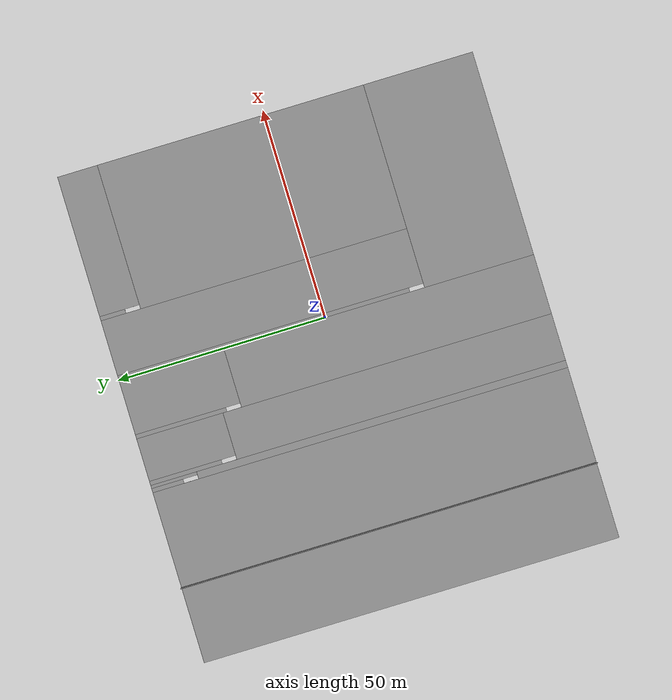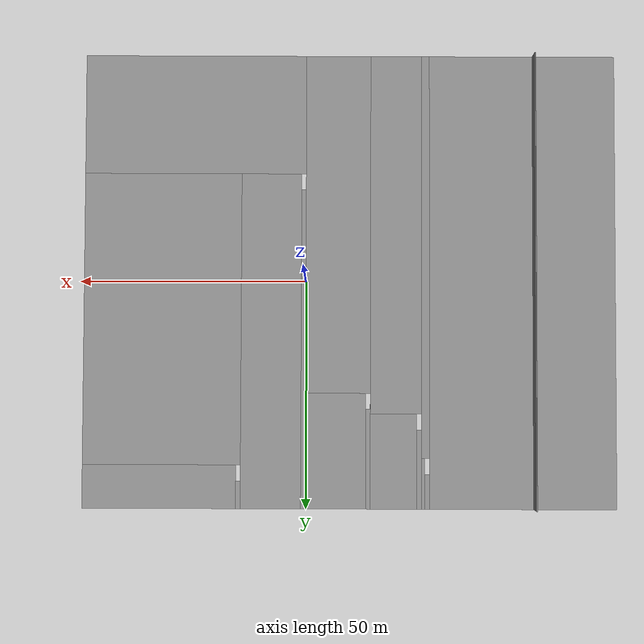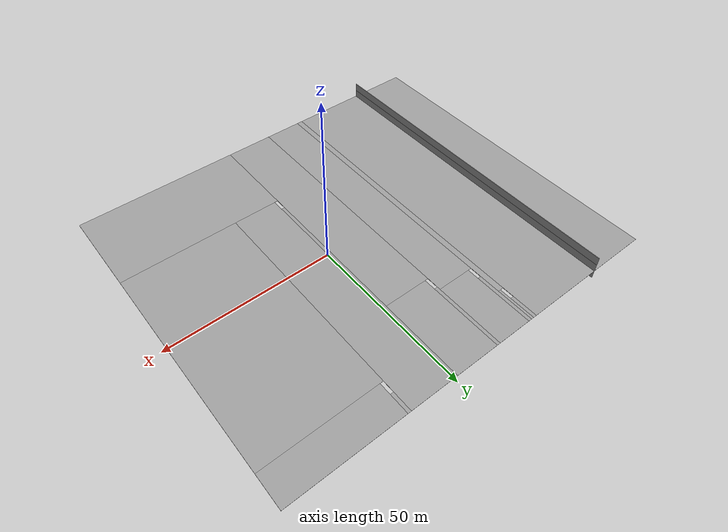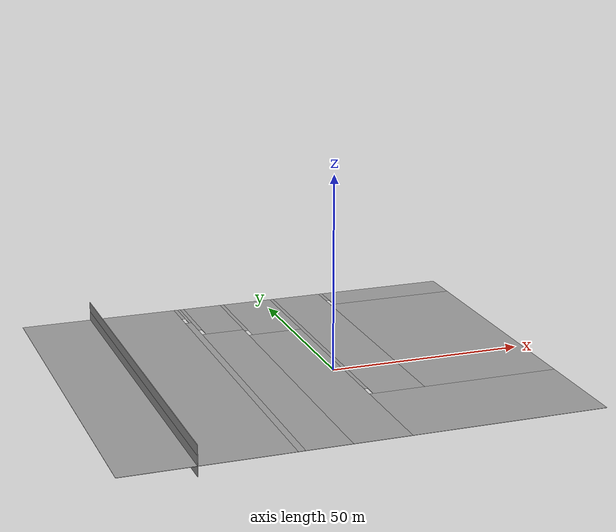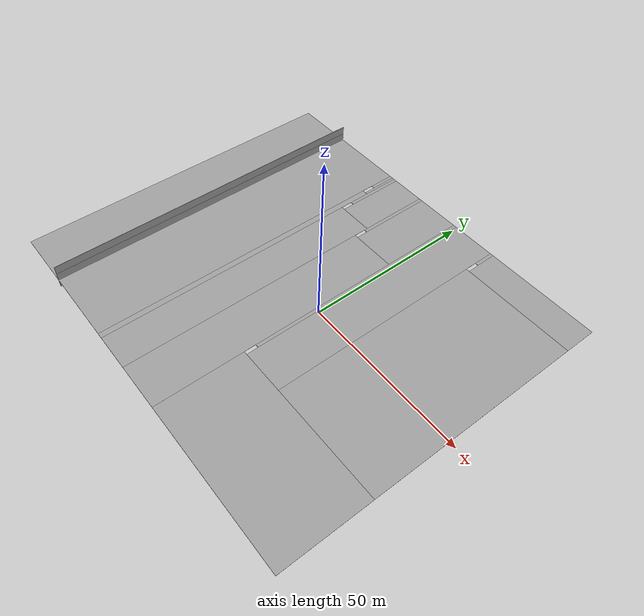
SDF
<sdf version="1.7">
 <model name="testx">
  <pose>-9.53854 -0.188873 0 0 -0 0</pose>
  <link name="Floor_0">
   <pose>-5e-06 1e-06 2.5 0 -0 0</pose>
   <visual name="Floor_0_Visual_0">
    <pose>-37.9276 0 0.05 0 -0 0</pose>
    <geometry><box><size>40.8948 99.75 0.1</size></box></geometry>
    <material>
     <script><uri>file://media/materials/scripts/gazebo.material</uri><name>Gazebo/Grey</name></script>
     <ambient>1 1 1 1</ambient>
    </material>
    <meta><layer>1</layer></meta>
   </visual>
   <collision name="Floor_0_Collision_0">
    <geometry><box><size>40.8948 99.75 0.1</size></box></geometry>
    <pose>-37.9276 0 0.05 0 -0 0</pose>
   </collision>
   <visual name="Floor_0_Visual_1">
    <pose>-16.609 -5.51796 0.05 0 -0 0</pose>
    <geometry><box><size>1.7424 88.7141 0.1</size></box></geometry>
    <material>
     <script><uri>file://media/materials/scripts/gazebo.material</uri><name>Gazebo/Grey</name></script>
     <ambient>1 1 1 1</ambient>
    </material>
    <meta><layer>1</layer></meta>
   </visual>
   <collision name="Floor_0_Collision_1">
    <geometry><box><size>1.7424 88.7141 0.1</size></box></geometry>
    <pose>-16.609 -5.51796 0.05 0 -0 0</pose>
   </collision>
   <visual name="Floor_0_Visual_2">
    <pose>-10.1372 -10.3718 0.05 0 -0 0</pose>
    <geometry><box><size>11.2012 79.0064 0.1</size></box></geometry>
    <material>
     <script><uri>file://media/materials/scripts/gazebo.material</uri><name>Gazebo/Grey</name></script>
     <ambient>1 1 1 1</ambient>
    </material>
    <meta><layer>1</layer></meta>
   </visual>
   <collision name="Floor_0_Collision_2">
    <geometry><box><size>11.2012 79.0064 0.1</size></box></geometry>
    <pose>-10.1372 -10.3718 0.05 0 -0 0</pose>
   </collision>
   <visual name="Floor_0_Visual_3">
    <pose>2.55744 -12.612 0.05 0 -0 0</pose>
    <geometry><box><size>14.1881 74.5259 0.1</size></box></geometry>
    <material>
     <script><uri>file://media/materials/scripts/gazebo.material</uri><name>Gazebo/Grey</name></script>
     <ambient>1 1 1 1</ambient>
    </material>
    <meta><layer>1</layer></meta>
   </visual>
   <collision name="Floor_0_Collision_3">
    <geometry><box><size>14.1881 74.5259 0.1</size></box></geometry>
    <pose>2.55744 -12.612 0.05 0 -0 0</pose>
   </collision>
   <visual name="Floor_0_Visual_4">
    <pose>34.0133 -36.7567 0.05 0 -0 0</pose>
    <geometry><box><size>48.7235 26.2365 0.1</size></box></geometry>
    <material>
     <script><uri>file://media/materials/scripts/gazebo.material</uri><name>Gazebo/Grey</name></script>
     <ambient>1 1 1 1</ambient>
    </material>
    <meta><layer>1</layer></meta>
   </visual>
   <collision name="Floor_0_Collision_4">
    <geometry><box><size>48.7235 26.2365 0.1</size></box></geometry>
    <pose>34.0133 -36.7567 0.05 0 -0 0</pose>
   </collision>
   <visual name="Floor_0_Visual_5">
    <pose>17.2456 13.1183 0.05 0 -0 0</pose>
    <geometry><box><size>13.1881 73.5135 0.1</size></box></geometry>
    <material>
     <script><uri>file://media/materials/scripts/gazebo.material</uri><name>Gazebo/Grey</name></script>
     <ambient>1 1 1 1</ambient>
    </material>
    <meta><layer>1</layer></meta>
   </visual>
   <collision name="Floor_0_Collision_5">
    <geometry><box><size>13.1881 73.5135 0.1</size></box></geometry>
    <pose>17.2456 13.1183 0.05 0 -0 0</pose>
   </collision>
   <visual name="Floor_0_Visual_6">
    <pose>41.1073 8.34704 0.05 0 -0 0</pose>
    <geometry><box><size>34.5354 63.971 0.1</size></box></geometry>
    <material>
     <script><uri>file://media/materials/scripts/gazebo.material</uri><name>Gazebo/Grey</name></script>
     <ambient>1 1 1 1</ambient>
    </material>
    <meta><layer>1</layer></meta>
   </visual>
   <collision name="Floor_0_Collision_6">
    <geometry><box><size>34.5354 63.971 0.1</size></box></geometry>
    <pose>41.1073 8.34704 0.05 0 -0 0</pose>
   </collision>
   <visual name="Floor_0_Visual_7">
    <pose>10.1515 14.8683 0.05 0 -0 0</pose>
    <geometry><box><size>1 70.0135 0.1</size></box></geometry>
    <material>
     <script><uri>file://media/materials/scripts/gazebo.material</uri><name>Gazebo/Grey</name></script>
     <ambient>1 1 1 1</ambient>
    </material>
    <meta><layer>1</layer></meta>
   </visual>
   <collision name="Floor_0_Collision_7">
    <geometry><box><size>1 70.0135 0.1</size></box></geometry>
    <pose>10.1515 14.8683 0.05 0 -0 0</pose>
   </collision>
   <visual name="Floor_0_Visual_8">
    <pose>3.05744 37.263 0.05 0 -0 0</pose>
    <geometry><box><size>13.1881 25.2241 0.1</size></box></geometry>
    <material>
     <script><uri>file://media/materials/scripts/gazebo.material</uri><name>Gazebo/Grey</name></script>
     <ambient>1 1 1 1</ambient>
    </material>
    <meta><layer>1</layer></meta>
   </visual>
   <collision name="Floor_0_Collision_8">
    <geometry><box><size>13.1881 25.2241 0.1</size></box></geometry>
    <pose>3.05744 37.263 0.05 0 -0 0</pose>
   </collision>
   <visual name="Floor_0_Visual_9">
    <pose>-4.03662 39.013 0.05 0 -0 0</pose>
    <geometry><box><size>1 21.7241 0.1</size></box></geometry>
    <material>
     <script><uri>file://media/materials/scripts/gazebo.material</uri><name>Gazebo/Grey</name></script>
     <ambient>1 1 1 1</ambient>
    </material>
    <meta><layer>1</layer></meta>
   </visual>
   <collision name="Floor_0_Collision_9">
    <geometry><box><size>1 21.7241 0.1</size></box></geometry>
    <pose>-4.03662 39.013 0.05 0 -0 0</pose>
   </collision>
   <visual name="Floor_0_Visual_10">
    <pose>-9.6372 39.5032 0.05 0 -0 0</pose>
    <geometry><box><size>10.2012 20.7436 0.1</size></box></geometry>
    <material>
     <script><uri>file://media/materials/scripts/gazebo.material</uri><name>Gazebo/Grey</name></script>
     <ambient>1 1 1 1</ambient>
    </material>
    <meta><layer>1</layer></meta>
   </visual>
   <collision name="Floor_0_Collision_10">
    <geometry><box><size>10.2012 20.7436 0.1</size></box></geometry>
    <pose>-9.6372 39.5032 0.05 0 -0 0</pose>
   </collision>
   <visual name="Floor_0_Visual_11">
    <pose>-15.2378 41.2532 0.05 0 -0 0</pose>
    <geometry><box><size>1 17.2436 0.1</size></box></geometry>
    <material>
     <script><uri>file://media/materials/scripts/gazebo.material</uri><name>Gazebo/Grey</name></script>
     <ambient>1 1 1 1</ambient>
    </material>
    <meta><layer>1</layer></meta>
   </visual>
   <collision name="Floor_0_Collision_11">
    <geometry><box><size>1 17.2436 0.1</size></box></geometry>
    <pose>-15.2378 41.2532 0.05 0 -0 0</pose>
   </collision>
   <visual name="Floor_0_Visual_12">
    <pose>-16.109 44.357 0.05 0 -0 0</pose>
    <geometry><box><size>0.742401 11.0359 0.1</size></box></geometry>
    <material>
     <script><uri>file://media/materials/scripts/gazebo.material</uri><name>Gazebo/Grey</name></script>
     <ambient>1 1 1 1</ambient>
    </material>
    <meta><layer>1</layer></meta>
   </visual>
   <collision name="Floor_0_Collision_12">
    <geometry><box><size>0.742401 11.0359 0.1</size></box></geometry>
    <pose>-16.109 44.357 0.05 0 -0 0</pose>
   </collision>
   <visual name="Floor_0_Visual_13">
    <pose>41.6073 45.1038 0.05 0 -0 0</pose>
    <geometry><box><size>33.5354 9.54244 0.1</size></box></geometry>
    <material>
     <script><uri>file://media/materials/scripts/gazebo.material</uri><name>Gazebo/Grey</name></script>
     <ambient>1 1 1 1</ambient>
    </material>
    <meta><layer>1</layer></meta>
   </visual>
   <collision name="Floor_0_Collision_13">
    <geometry><box><size>33.5354 9.54244 0.1</size></box></geometry>
    <pose>41.6073 45.1038 0.05 0 -0 0</pose>
   </collision>
   <visual name="Floor_0_Visual_14">
    <pose>-16.9802 46.107 0.05 0 -0 0</pose>
    <geometry><box><size>1 7.53592 0.1</size></box></geometry>
    <material>
     <script><uri>file://media/materials/scripts/gazebo.material</uri><name>Gazebo/Grey</name></script>
     <ambient>1 1 1 1</ambient>
    </material>
    <meta><layer>1</layer></meta>
   </visual>
   <collision name="Floor_0_Collision_14">
    <geometry><box><size>1 7.53592 0.1</size></box></geometry>
    <pose>-16.9802 46.107 0.05 0 -0 0</pose>
   </collision>
   <visual name="Floor_0_Visual_15">
    <pose>24.3396 46.8538 0.05 0 -0 0</pose>
    <geometry><box><size>1 6.04244 0.1</size></box></geometry>
    <material>
     <script><uri>file://media/materials/scripts/gazebo.material</uri><name>Gazebo/Grey</name></script>
     <ambient>1 1 1 1</ambient>
    </material>
    <meta><layer>1</layer></meta>
   </visual>
   <collision name="Floor_0_Collision_15">
    <geometry><box><size>1 6.04244 0.1</size></box></geometry>
    <pose>24.3396 46.8538 0.05 0 -0 0</pose>
   </collision>
  </link>
  <link name="Wall_14">
   <collision name="Wall_14_Collision">
    <geometry><box><size>99.75 0.15 2.5</size></box></geometry>
    <pose>0 0 1.25 0 -0 0</pose>
   </collision>
   <visual name="Wall_14_Visual">
    <pose>0 0 1.25 0 -0 0</pose>
    <geometry><box><size>99.75 0.15 2.5</size></box></geometry>
    <material>
     <script><uri>file://media/materials/scripts/gazebo.material</uri><name>Gazebo/Grey</name></script>
     <ambient>1 1 1 1</ambient>
    </material>
    <meta><layer>0</layer></meta>
   </visual>
   <pose>-40.3 1e-06 0 0 -0 1.5708</pose>
  </link>
  <link name="Wall_19">
   <collision name="Wall_19_Collision">
    <geometry><box><size>99.75 0.15 2.5</size></box></geometry>
    <pose>0 0 1.25 0 -0 0</pose>
   </collision>
   <visual name="Wall_19_Visual">
    <pose>0 0 1.25 0 -0 0</pose>
    <geometry><box><size>99.75 0.15 2.5</size></box></geometry>
    <material>
     <script><uri>file://media/materials/scripts/gazebo.material</uri><name>Gazebo/Grey</name></script>
     <ambient>1 1 1 1</ambient>
    </material>
    <meta><layer>1</layer></meta>
   </visual>
   <pose>-40.3 1e-06 2.5 0 -0 1.5708</pose>
  </link>
  <link name="Wall_23">
   <collision name="Wall_23_Collision">
    <geometry><box><size>99.75 0.15 2.5</size></box></geometry>
    <pose>0 0 1.25 0 -0 0</pose>
   </collision>
   <visual name="Wall_23_Visual">
    <pose>0 0 1.25 0 -0 0</pose>
    <geometry><box><size>99.75 0.15 2.5</size></box></geometry>
    <material>
     <script><uri>file://media/materials/scripts/gazebo.material</uri><name>Gazebo/Grey</name></script>
     <ambient>1 1 1 1</ambient>
    </material>
    <meta><layer>2</layer></meta>
   </visual>
   <pose>-40.3 1e-06 5 0 -0 1.5708</pose>
  </link>
  <static>1</static>
 </model>
</sdf>
